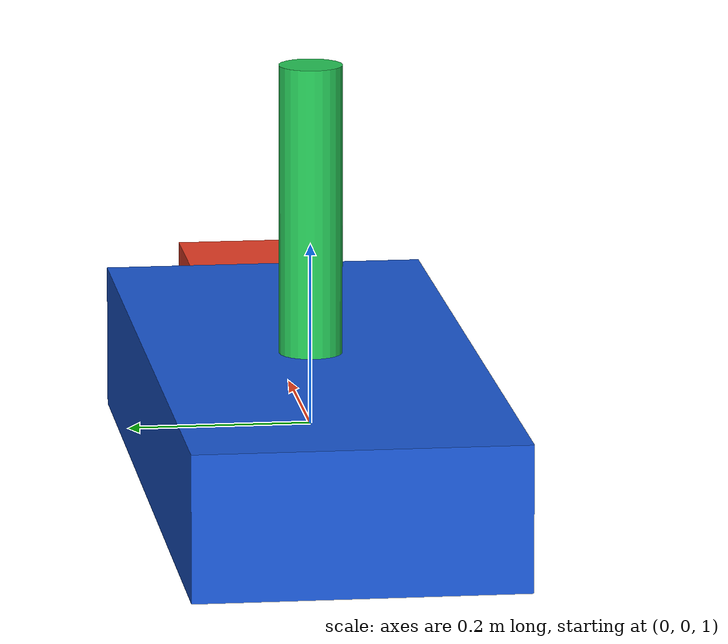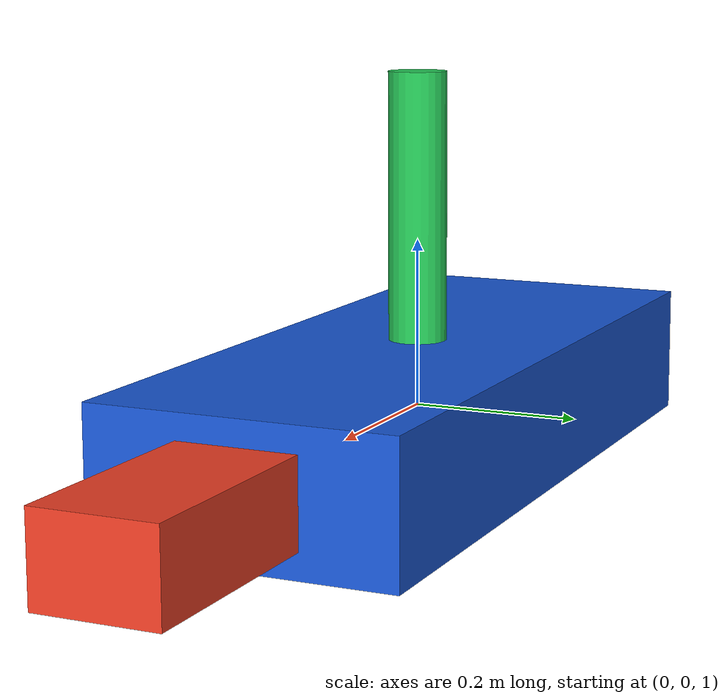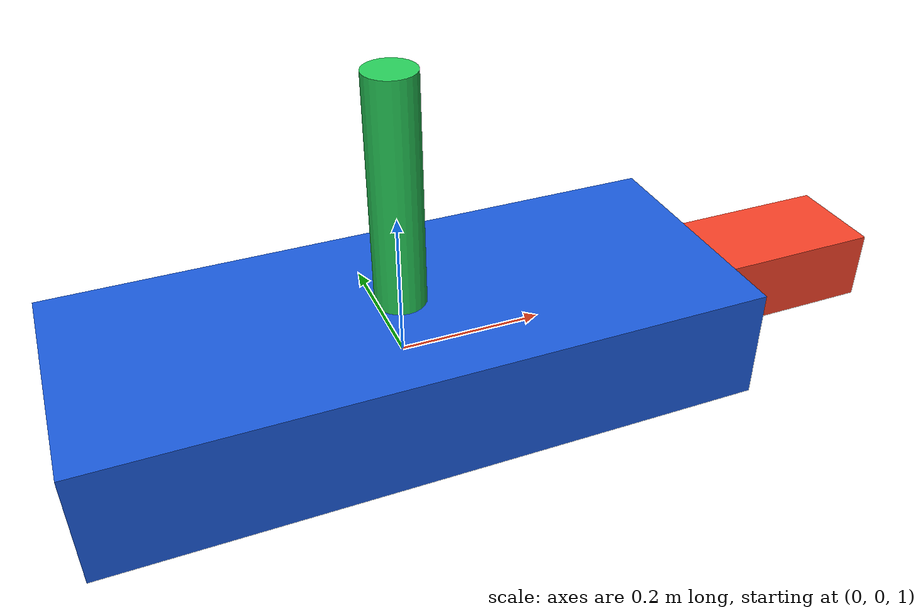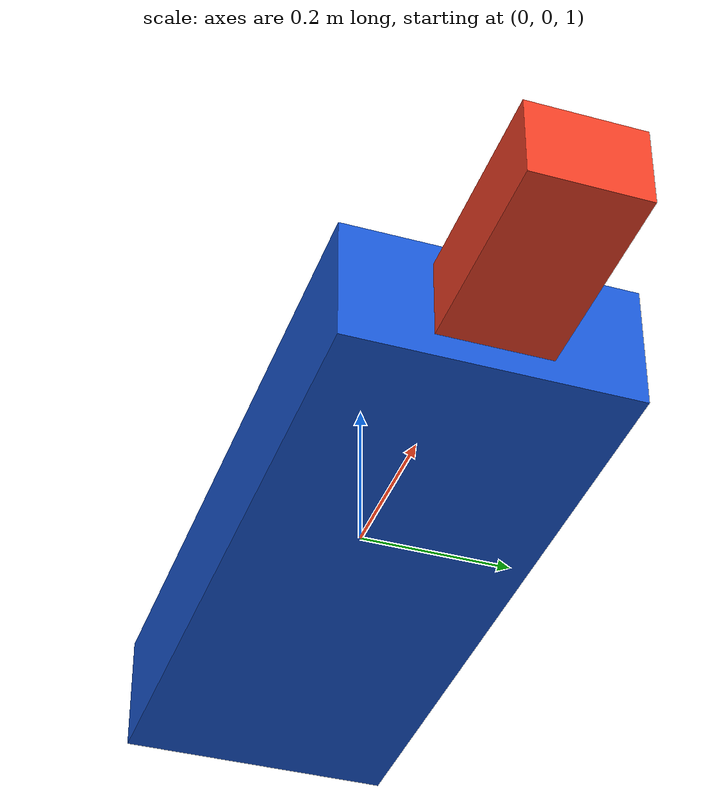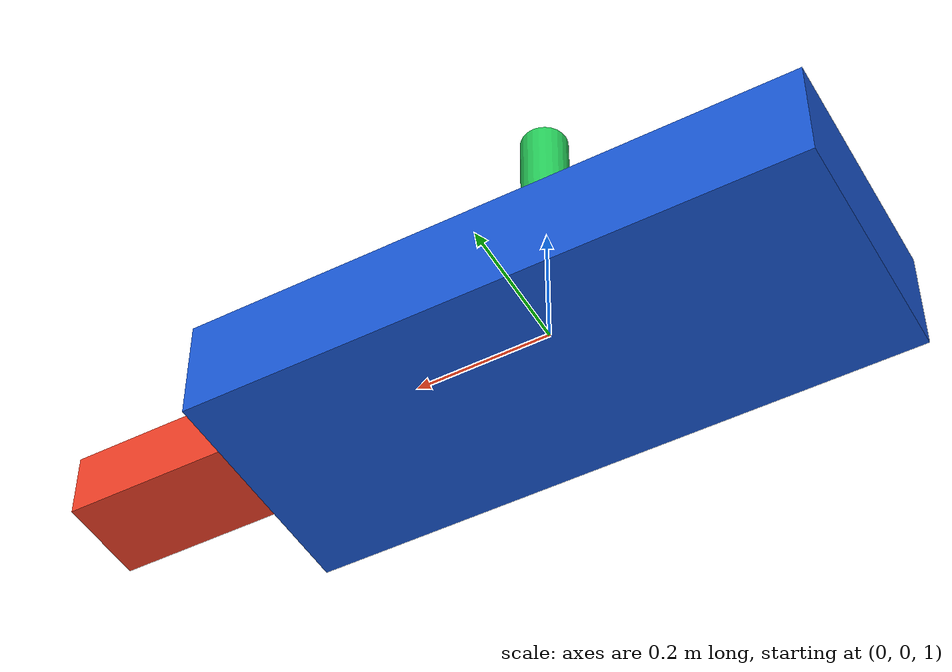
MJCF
<mujoco model="orientation_probe">
  <option timestep="0.01"/>
  <worldbody>
    <light pos="0 -3 3"/>
    <camera name="main" pos="0 -4 2" xyaxes="1 0 0 0 0.45 0.89"/>
    <body name="probe" pos="0 0 1">
      <freejoint name="imu_orientation"/>
      <geom name="body" type="box" size="0.45 0.18 0.08" rgba="0.1 0.35 0.85 1"/>
      <geom name="nose" type="box" pos="0.55 0 0" size="0.16 0.07 0.05" rgba="0.95 0.25 0.15 1"/>
      <geom name="up" type="cylinder" pos="0 0 0.22" size="0.035 0.18" rgba="0.15 0.8 0.35 1"/>
    </body>
  </worldbody>
</mujoco>
